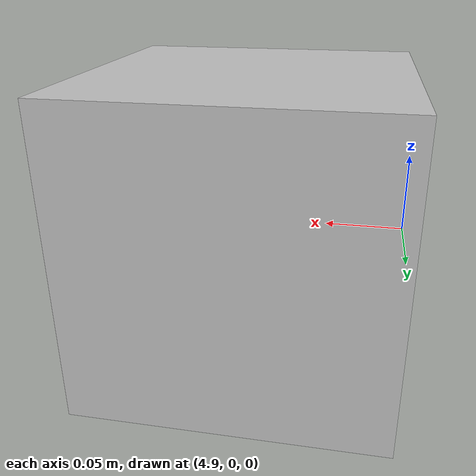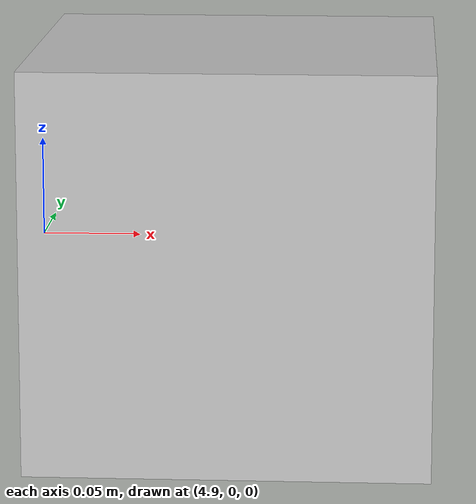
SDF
<?xml version='1.0'?>
<sdf version='1.4'>
<model name="block">
    <pose>5 0 0 0 0 0</pose>
    <static>true</static>
    <link name="link">
      <inertial>
        <mass>1.0</mass>
        <inertia> <!-- inertias are tricky to compute -->
          <!-- http://gazebosim.org/tutorials?tut=inertia&cat=build_robot -->
          <ixx>0.083</ixx>       <!-- for a box: ixx = 0.083 * mass * (y*y + z*z) -->
          <ixy>0.0</ixy>         <!-- for a box: ixy = 0 -->
          <ixz>0.0</ixz>         <!-- for a box: ixz = 0 -->
          <iyy>0.083</iyy>       <!-- for a box: iyy = 0.083 * mass * (x*x + z*z) -->
          <iyz>0.0</iyz>         <!-- for a box: iyz = 0 -->
          <izz>0.083</izz>       <!-- for a box: izz = 0.083 * mass * (x*x + y*y) -->
        </inertia>
      </inertial>
      <collision name="collision">
        <geometry>
            <mesh>
            <scale>1 1 1</scale>
            <uri>model://block/meshes/box_object.dae</uri>
            </mesh>
        </geometry>
      </collision>
      <visual name="visual">
        <geometry>
           <mesh>
            <scale>1 1 1</scale>
            <uri>model://block/meshes/box_object.dae</uri>
           </mesh>
        </geometry>
      </visual>
    </link>
  </model>
</sdf>
